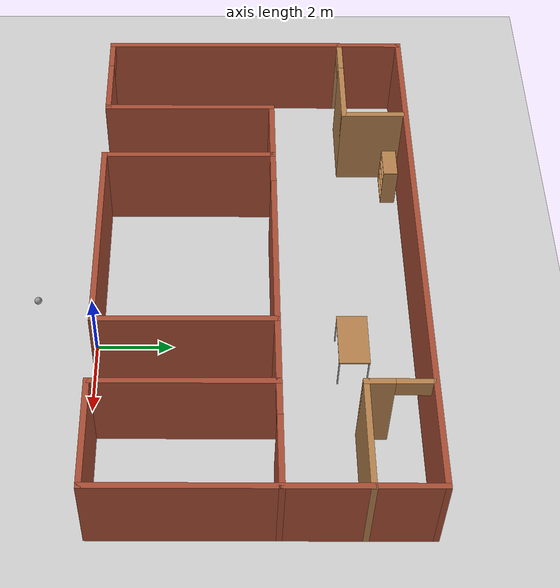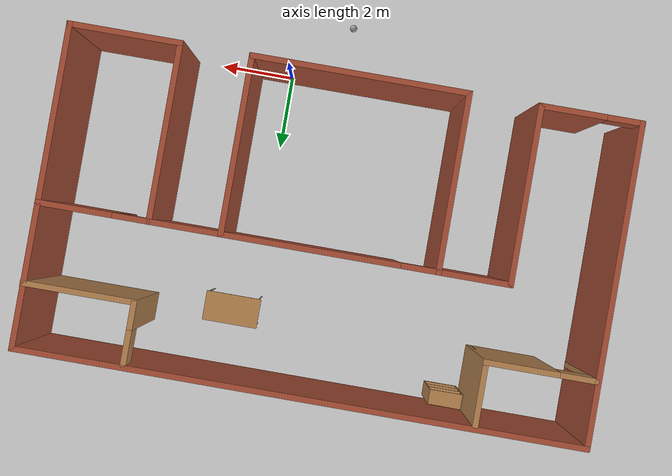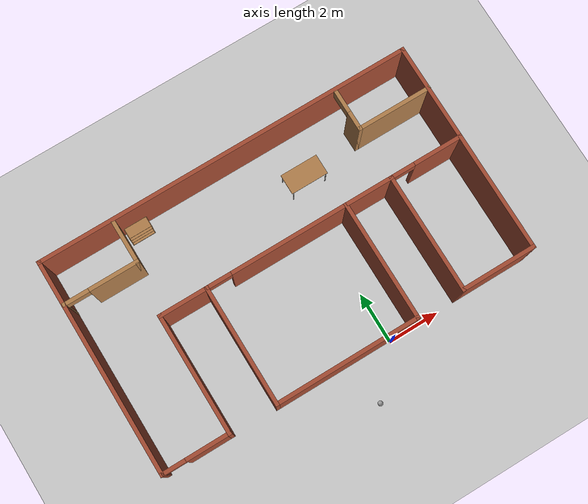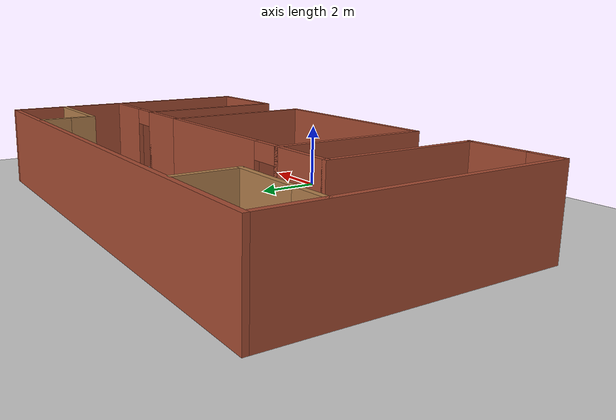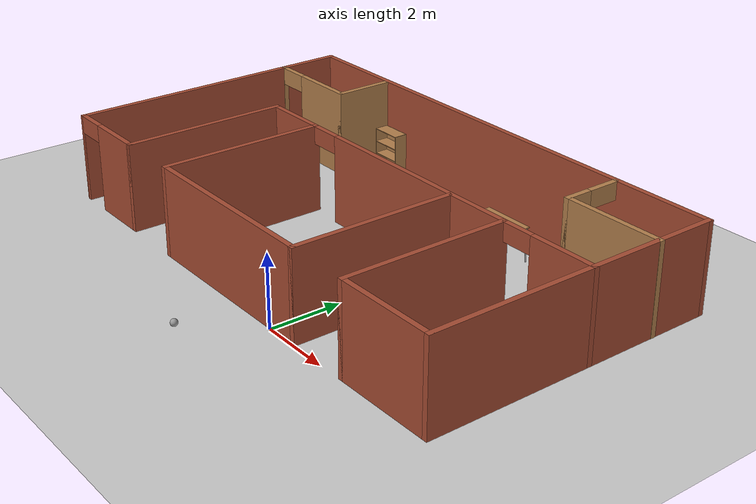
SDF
<sdf version="1.6">
 <world name="default">
  <light name="sun" type="directional">
   <pose>0 0 10 0 -0 0</pose>
   <diffuse>0.8 0.8 0.8 1</diffuse>
   <specular>0.2 0.2 0.2 1</specular>
   <attenuation>
    <range>1000</range>
    <constant>0.9</constant>
    <linear>0.01</linear>
    <quadratic>0.001</quadratic>
   </attenuation>
   <direction>-0.5 0.1 -0.9</direction>
  </light>
  <model name="ground_plane">
   <static>1</static>
   <link name="link">
    <collision name="collision">
     <geometry><plane><normal>0 0 1</normal><size>100 100</size></plane></geometry>
     <surface>
      <contact><collide_bitmask>65535</collide_bitmask></contact>
      <friction><ode><mu>100</mu><mu2>50</mu2></ode></friction>
     </surface>
    </collision>
    <visual name="visual">
     <cast_shadows>0</cast_shadows>
     <geometry><plane><normal>0 0 1</normal><size>100 100</size></plane></geometry>
     <material>
      <script><uri>file://media/materials/scripts/gazebo.material</uri><name>Gazebo/Grey</name></script>
     </material>
    </visual>
   </link>
  </model>
  <gravity>0 0 -9.8</gravity>
  <magnetic_field>6e-06 2.3e-05 -4.2e-05</magnetic_field>
  <atmosphere type="adiabatic"/>
  <physics name="default_physics" default="0" type="ode">
   <max_step_size>0.001</max_step_size>
   <real_time_factor>1</real_time_factor>
   <real_time_update_rate>1000</real_time_update_rate>
  </physics>
  <scene><ambient>0.4 0.4 0.4 1</ambient><background>0.7 0.7 0.7 1</background><shadows>1</shadows></scene>
  <spherical_coordinates>
   <surface_model>EARTH_WGS84</surface_model>
   <latitude_deg>0</latitude_deg>
   <longitude_deg>0</longitude_deg>
   <elevation>0</elevation>
   <heading_deg>0</heading_deg>
  </spherical_coordinates>
  <model name="mybuilding2">
   <pose>-1.76364 4.25644 0 0 -0 0</pose>
   <link name="Wall_1">
    <collision name="Wall_1_Collision">
     <geometry><box><size>8.5 0.15 2.5</size></box></geometry>
     <pose>0 0 1.25 0 -0 0</pose>
    </collision>
    <visual name="Wall_1_Visual">
     <pose>0 0 1.25 0 -0 0</pose>
     <geometry><box><size>8.5 0.15 2.5</size></box></geometry>
     <material>
      <script><uri>file://media/materials/scripts/gazebo.material</uri><name>Gazebo/Bricks</name></script>
      <ambient>1 1 1 1</ambient>
     </material>
     <meta><layer>0</layer></meta>
    </visual>
    <pose>-7.37922 0 0 0 0 -1.5708</pose>
   </link>
   <link name="Wall_10">
    <collision name="Wall_10_Collision">
     <geometry><box><size>3 0.15 2.5</size></box></geometry>
     <pose>0 0 1.25 0 -0 0</pose>
    </collision>
    <visual name="Wall_10_Visual">
     <pose>0 0 1.25 0 -0 0</pose>
     <geometry><box><size>3 0.15 2.5</size></box></geometry>
     <material>
      <script><uri>file://media/materials/scripts/gazebo.material</uri><name>Gazebo/Bricks</name></script>
      <ambient>1 1 1 1</ambient>
     </material>
     <meta><layer>0</layer></meta>
    </visual>
    <pose>5.94578 -4.175 0 0 -0 0</pose>
   </link>
   <link name="Wall_11">
    <collision name="Wall_11_Collision">
     <geometry><box><size>8.5 0.15 2.5</size></box></geometry>
     <pose>0 0 1.25 0 -0 0</pose>
    </collision>
    <visual name="Wall_11_Visual">
     <pose>0 0 1.25 0 -0 0</pose>
     <geometry><box><size>8.5 0.15 2.5</size></box></geometry>
     <material>
      <script><uri>file://media/materials/scripts/gazebo.material</uri><name>Gazebo/Bricks</name></script>
      <ambient>1 1 1 1</ambient>
     </material>
     <meta><layer>0</layer></meta>
    </visual>
    <pose>7.37078 0 0 0 -0 1.5708</pose>
   </link>
   <link name="Wall_12">
    <collision name="Wall_12_Collision">
     <geometry><box><size>14.9 0.15 2.5</size></box></geometry>
     <pose>0 0 1.25 0 -0 0</pose>
    </collision>
    <visual name="Wall_12_Visual">
     <pose>0 0 1.25 0 -0 0</pose>
     <geometry><box><size>14.9 0.15 2.5</size></box></geometry>
     <material>
      <script><uri>file://media/materials/scripts/gazebo.material</uri><name>Gazebo/Bricks</name></script>
      <ambient>1 1 1 1</ambient>
     </material>
     <meta><layer>0</layer></meta>
    </visual>
    <pose>-0.004225 4.175 0 0 -0 3.14159</pose>
   </link>
   <link name="Wall_14">
    <pose>-5.92381 2.45641 0 0 -0 0</pose>
    <visual name="Wall_14_Visual_0">
     <pose>-1.43656 0 1.25 0 -0 0</pose>
     <geometry><box><size>0.126889 0.15 2.5</size></box></geometry>
     <material>
      <script><uri>file://media/materials/scripts/gazebo.material</uri><name>Gazebo/Wood</name></script>
      <ambient>1 1 1 1</ambient>
     </material>
     <meta><layer>0</layer></meta>
    </visual>
    <collision name="Wall_14_Collision_0">
     <geometry><box><size>0.126889 0.15 2.5</size></box></geometry>
     <pose>-1.43656 0 1.25 0 -0 0</pose>
    </collision>
    <visual name="Wall_14_Visual_1">
     <pose>0.513445 0 1.25 0 -0 0</pose>
     <geometry><box><size>1.97311 0.15 2.5</size></box></geometry>
     <material>
      <script><uri>file://media/materials/scripts/gazebo.material</uri><name>Gazebo/Wood</name></script>
      <ambient>1 1 1 1</ambient>
     </material>
     <meta><layer>0</layer></meta>
    </visual>
    <collision name="Wall_14_Collision_1">
     <geometry><box><size>1.97311 0.15 2.5</size></box></geometry>
     <pose>0.513445 0 1.25 0 -0 0</pose>
    </collision>
    <visual name="Wall_14_Visual_2">
     <pose>-0.923111 0 2.25 0 -0 0</pose>
     <geometry><box><size>0.9 0.15 0.5</size></box></geometry>
     <material>
      <script><uri>file://media/materials/scripts/gazebo.material</uri><name>Gazebo/Wood</name></script>
      <ambient>1 1 1 1</ambient>
     </material>
     <meta><layer>0</layer></meta>
    </visual>
    <collision name="Wall_14_Collision_2">
     <geometry><box><size>0.9 0.15 0.5</size></box></geometry>
     <pose>-0.923111 0 2.25 0 -0 0</pose>
    </collision>
   </link>
   <link name="Wall_15">
    <collision name="Wall_15_Collision">
     <geometry><box><size>1.75 0.15 2.5</size></box></geometry>
     <pose>0 0 1.25 0 -0 0</pose>
    </collision>
    <visual name="Wall_15_Visual">
     <pose>0 0 1.25 0 -0 0</pose>
     <geometry><box><size>1.75 0.15 2.5</size></box></geometry>
     <material>
      <script><uri>file://media/materials/scripts/gazebo.material</uri><name>Gazebo/Wood</name></script>
      <ambient>1 1 1 1</ambient>
     </material>
     <meta><layer>0</layer></meta>
    </visual>
    <pose>-4.49881 3.25641 0 0 -0 1.5708</pose>
   </link>
   <link name="Wall_17">
    <pose>-0.129225 0.425 0 0 -0 0</pose>
    <visual name="Wall_17_Visual_0">
     <pose>-2.80087 0 1.25 0 -0 0</pose>
     <geometry><box><size>0.148262 0.15 2.5</size></box></geometry>
     <material>
      <script><uri>file://media/materials/scripts/gazebo.material</uri><name>Gazebo/Bricks</name></script>
      <ambient>1 1 1 1</ambient>
     </material>
     <meta><layer>0</layer></meta>
    </visual>
    <collision name="Wall_17_Collision_0">
     <geometry><box><size>0.148262 0.15 2.5</size></box></geometry>
     <pose>-2.80087 0 1.25 0 -0 0</pose>
    </collision>
    <visual name="Wall_17_Visual_1">
     <pose>0.524131 0 1.25 0 -0 0</pose>
     <geometry><box><size>4.70174 0.15 2.5</size></box></geometry>
     <material>
      <script><uri>file://media/materials/scripts/gazebo.material</uri><name>Gazebo/Bricks</name></script>
      <ambient>1 1 1 1</ambient>
     </material>
     <meta><layer>0</layer></meta>
    </visual>
    <collision name="Wall_17_Collision_1">
     <geometry><box><size>4.70174 0.15 2.5</size></box></geometry>
     <pose>0.524131 0 1.25 0 -0 0</pose>
    </collision>
    <visual name="Wall_17_Visual_2">
     <pose>-2.27674 0 2.25 0 -0 0</pose>
     <geometry><box><size>0.9 0.15 0.5</size></box></geometry>
     <material>
      <script><uri>file://media/materials/scripts/gazebo.material</uri><name>Gazebo/Bricks</name></script>
      <ambient>1 1 1 1</ambient>
     </material>
     <meta><layer>0</layer></meta>
    </visual>
    <collision name="Wall_17_Collision_2">
     <geometry><box><size>0.9 0.15 0.5</size></box></geometry>
     <pose>-2.27674 0 2.25 0 -0 0</pose>
    </collision>
   </link>
   <link name="Wall_19">
    <pose>5.94578 0.425 0 0 -0 0</pose>
    <visual name="Wall_19_Visual_0">
     <pose>-1.43993 0 1.25 0 -0 0</pose>
     <geometry><box><size>0.120131 0.15 2.5</size></box></geometry>
     <material>
      <script><uri>file://media/materials/scripts/gazebo.material</uri><name>Gazebo/Bricks</name></script>
      <ambient>1 1 1 1</ambient>
     </material>
     <meta><layer>0</layer></meta>
    </visual>
    <collision name="Wall_19_Collision_0">
     <geometry><box><size>0.120131 0.15 2.5</size></box></geometry>
     <pose>-1.43993 0 1.25 0 -0 0</pose>
    </collision>
    <visual name="Wall_19_Visual_1">
     <pose>0.510066 0 1.25 0 -0 0</pose>
     <geometry><box><size>1.97987 0.15 2.5</size></box></geometry>
     <material>
      <script><uri>file://media/materials/scripts/gazebo.material</uri><name>Gazebo/Bricks</name></script>
      <ambient>1 1 1 1</ambient>
     </material>
     <meta><layer>0</layer></meta>
    </visual>
    <collision name="Wall_19_Collision_1">
     <geometry><box><size>1.97987 0.15 2.5</size></box></geometry>
     <pose>0.510066 0 1.25 0 -0 0</pose>
    </collision>
    <visual name="Wall_19_Visual_2">
     <pose>-0.929869 0 2.25 0 -0 0</pose>
     <geometry><box><size>0.9 0.15 0.5</size></box></geometry>
     <material>
      <script><uri>file://media/materials/scripts/gazebo.material</uri><name>Gazebo/Bricks</name></script>
      <ambient>1 1 1 1</ambient>
     </material>
     <meta><layer>0</layer></meta>
    </visual>
    <collision name="Wall_19_Collision_2">
     <geometry><box><size>0.9 0.15 0.5</size></box></geometry>
     <pose>-0.929869 0 2.25 0 -0 0</pose>
    </collision>
   </link>
   <link name="Wall_2">
    <pose>-6.07923 -4.175 0 0 -0 0</pose>
    <visual name="Wall_2_Visual_0">
     <pose>-1.33437 0 1.25 0 -0 0</pose>
     <geometry><box><size>0.081262 0.15 2.5</size></box></geometry>
     <material>
      <script><uri>file://media/materials/scripts/gazebo.material</uri><name>Gazebo/Bricks</name></script>
      <ambient>1 1 1 1</ambient>
     </material>
     <meta><layer>0</layer></meta>
    </visual>
    <collision name="Wall_2_Collision_0">
     <geometry><box><size>0.081262 0.15 2.5</size></box></geometry>
     <pose>-1.33437 0 1.25 0 -0 0</pose>
    </collision>
    <visual name="Wall_2_Visual_1">
     <pose>0.490631 0 1.25 0 -0 0</pose>
     <geometry><box><size>1.76874 0.15 2.5</size></box></geometry>
     <material>
      <script><uri>file://media/materials/scripts/gazebo.material</uri><name>Gazebo/Bricks</name></script>
      <ambient>1 1 1 1</ambient>
     </material>
     <meta><layer>0</layer></meta>
    </visual>
    <collision name="Wall_2_Collision_1">
     <geometry><box><size>1.76874 0.15 2.5</size></box></geometry>
     <pose>0.490631 0 1.25 0 -0 0</pose>
    </collision>
    <visual name="Wall_2_Visual_2">
     <pose>-0.843738 0 2.25 0 -0 0</pose>
     <geometry><box><size>0.9 0.15 0.5</size></box></geometry>
     <material>
      <script><uri>file://media/materials/scripts/gazebo.material</uri><name>Gazebo/Bricks</name></script>
      <ambient>1 1 1 1</ambient>
     </material>
     <meta><layer>0</layer></meta>
    </visual>
    <collision name="Wall_2_Collision_2">
     <geometry><box><size>0.9 0.15 0.5</size></box></geometry>
     <pose>-0.843738 0 2.25 0 -0 0</pose>
    </collision>
   </link>
   <link name="Wall_21">
    <pose>4.52923 3.29896 0 0 0 -1.5708</pose>
    <visual name="Wall_21_Visual_0">
     <pose>-0.841973 0 1.25 0 -0 0</pose>
     <geometry><box><size>0.066054 0.15 2.5</size></box></geometry>
     <material>
      <script><uri>file://media/materials/scripts/gazebo.material</uri><name>Gazebo/Wood</name></script>
      <ambient>1 1 1 1</ambient>
     </material>
     <meta><layer>0</layer></meta>
    </visual>
    <collision name="Wall_21_Collision_0">
     <geometry><box><size>0.066054 0.15 2.5</size></box></geometry>
     <pose>-0.841973 0 1.25 0 -0 0</pose>
    </collision>
    <visual name="Wall_21_Visual_1">
     <pose>0.483027 0 1.25 0 -0 0</pose>
     <geometry><box><size>0.783946 0.15 2.5</size></box></geometry>
     <material>
      <script><uri>file://media/materials/scripts/gazebo.material</uri><name>Gazebo/Wood</name></script>
      <ambient>1 1 1 1</ambient>
     </material>
     <meta><layer>0</layer></meta>
    </visual>
    <collision name="Wall_21_Collision_1">
     <geometry><box><size>0.783946 0.15 2.5</size></box></geometry>
     <pose>0.483027 0 1.25 0 -0 0</pose>
    </collision>
    <visual name="Wall_21_Visual_2">
     <pose>-0.358946 0 2.25 0 -0 0</pose>
     <geometry><box><size>0.9 0.15 0.5</size></box></geometry>
     <material>
      <script><uri>file://media/materials/scripts/gazebo.material</uri><name>Gazebo/Wood</name></script>
      <ambient>1 1 1 1</ambient>
     </material>
     <meta><layer>0</layer></meta>
    </visual>
    <collision name="Wall_21_Collision_2">
     <geometry><box><size>0.9 0.15 0.5</size></box></geometry>
     <pose>-0.358946 0 2.25 0 -0 0</pose>
    </collision>
   </link>
   <link name="Wall_22">
    <collision name="Wall_22_Collision">
     <geometry><box><size>3 0.15 2.5</size></box></geometry>
     <pose>0 0 1.25 0 -0 0</pose>
    </collision>
    <visual name="Wall_22_Visual">
     <pose>0 0 1.25 0 -0 0</pose>
     <geometry><box><size>3 0.15 2.5</size></box></geometry>
     <material>
      <script><uri>file://media/materials/scripts/gazebo.material</uri><name>Gazebo/Wood</name></script>
      <ambient>1 1 1 1</ambient>
     </material>
     <meta><layer>0</layer></meta>
    </visual>
    <pose>5.95423 2.49896 0 0 -0 0</pose>
   </link>
   <link name="Wall_3">
    <collision name="Wall_3_Collision">
     <geometry><box><size>4.75 0.15 2.5</size></box></geometry>
     <pose>0 0 1.25 0 -0 0</pose>
    </collision>
    <visual name="Wall_3_Visual">
     <pose>0 0 1.25 0 -0 0</pose>
     <geometry><box><size>4.75 0.15 2.5</size></box></geometry>
     <material>
      <script><uri>file://media/materials/scripts/gazebo.material</uri><name>Gazebo/Bricks</name></script>
      <ambient>1 1 1 1</ambient>
     </material>
     <meta><layer>0</layer></meta>
    </visual>
    <pose>-4.77923 -1.875 0 0 -0 1.5708</pose>
   </link>
   <link name="Wall_4">
    <collision name="Wall_4_Collision">
     <geometry><box><size>2 0.15 2.5</size></box></geometry>
     <pose>0 0 1.25 0 -0 0</pose>
    </collision>
    <visual name="Wall_4_Visual">
     <pose>0 0 1.25 0 -0 0</pose>
     <geometry><box><size>2 0.15 2.5</size></box></geometry>
     <material>
      <script><uri>file://media/materials/scripts/gazebo.material</uri><name>Gazebo/Bricks</name></script>
      <ambient>1 1 1 1</ambient>
     </material>
     <meta><layer>0</layer></meta>
    </visual>
    <pose>-3.85423 0.425 0 0 -0 0</pose>
   </link>
   <link name="Wall_5">
    <collision name="Wall_5_Collision">
     <geometry><box><size>4.75 0.15 2.5</size></box></geometry>
     <pose>0 0 1.25 0 -0 0</pose>
    </collision>
    <visual name="Wall_5_Visual">
     <pose>0 0 1.25 0 -0 0</pose>
     <geometry><box><size>4.75 0.15 2.5</size></box></geometry>
     <material>
      <script><uri>file://media/materials/scripts/gazebo.material</uri><name>Gazebo/Bricks</name></script>
      <ambient>1 1 1 1</ambient>
     </material>
     <meta><layer>0</layer></meta>
    </visual>
    <pose>-2.92923 -1.875 0 0 0 -1.5708</pose>
   </link>
   <link name="Wall_6">
    <collision name="Wall_6_Collision">
     <geometry><box><size>5.75 0.15 2.5</size></box></geometry>
     <pose>0 0 1.25 0 -0 0</pose>
    </collision>
    <visual name="Wall_6_Visual">
     <pose>0 0 1.25 0 -0 0</pose>
     <geometry><box><size>5.75 0.15 2.5</size></box></geometry>
     <material>
      <script><uri>file://media/materials/scripts/gazebo.material</uri><name>Gazebo/Bricks</name></script>
      <ambient>1 1 1 1</ambient>
     </material>
     <meta><layer>0</layer></meta>
    </visual>
    <pose>-0.129225 -4.175 0 0 -0 0</pose>
   </link>
   <link name="Wall_7">
    <collision name="Wall_7_Collision">
     <geometry><box><size>4.75 0.15 2.5</size></box></geometry>
     <pose>0 0 1.25 0 -0 0</pose>
    </collision>
    <visual name="Wall_7_Visual">
     <pose>0 0 1.25 0 -0 0</pose>
     <geometry><box><size>4.75 0.15 2.5</size></box></geometry>
     <material>
      <script><uri>file://media/materials/scripts/gazebo.material</uri><name>Gazebo/Bricks</name></script>
      <ambient>1 1 1 1</ambient>
     </material>
     <meta><layer>0</layer></meta>
    </visual>
    <pose>2.67077 -1.875 0 0 -0 1.5708</pose>
   </link>
   <link name="Wall_8">
    <collision name="Wall_8_Collision">
     <geometry><box><size>2 0.15 2.5</size></box></geometry>
     <pose>0 0 1.25 0 -0 0</pose>
    </collision>
    <visual name="Wall_8_Visual">
     <pose>0 0 1.25 0 -0 0</pose>
     <geometry><box><size>2 0.15 2.5</size></box></geometry>
     <material>
      <script><uri>file://media/materials/scripts/gazebo.material</uri><name>Gazebo/Bricks</name></script>
      <ambient>1 1 1 1</ambient>
     </material>
     <meta><layer>0</layer></meta>
    </visual>
    <pose>3.59578 0.425 0 0 -0 0</pose>
   </link>
   <link name="Wall_9">
    <collision name="Wall_9_Collision">
     <geometry><box><size>4.75 0.15 2.5</size></box></geometry>
     <pose>0 0 1.25 0 -0 0</pose>
    </collision>
    <visual name="Wall_9_Visual">
     <pose>0 0 1.25 0 -0 0</pose>
     <geometry><box><size>4.75 0.15 2.5</size></box></geometry>
     <material>
      <script><uri>file://media/materials/scripts/gazebo.material</uri><name>Gazebo/Bricks</name></script>
      <ambient>1 1 1 1</ambient>
     </material>
     <meta><layer>0</layer></meta>
    </visual>
    <pose>4.52078 -1.875 0 0 0 -1.5708</pose>
   </link>
   <static>1</static>
  </model>
  <model name="bookshelf">
   <static>1</static>
   <link name="link">
    <inertial><mass>1</mass></inertial>
    <collision name="back">
     <pose>0 0.005 0.6 0 -0 0</pose>
     <geometry><box><size>0.9 0.01 1.2</size></box></geometry>
    </collision>
    <visual name="visual1">
     <pose>0 0.005 0.6 0 -0 0</pose>
     <geometry><box><size>0.9 0.01 1.2</size></box></geometry>
     <material>
      <script><uri>file://media/materials/scripts/gazebo.material</uri><name>Gazebo/Wood</name></script>
     </material>
    </visual>
    <collision name="left_side">
     <pose>0.45 -0.195 0.6 0 -0 0</pose>
     <geometry><box><size>0.02 0.4 1.2</size></box></geometry>
    </collision>
    <visual name="visual2">
     <pose>0.45 -0.195 0.6 0 -0 0</pose>
     <geometry><box><size>0.02 0.4 1.2</size></box></geometry>
     <material>
      <script><uri>file://media/materials/scripts/gazebo.material</uri><name>Gazebo/Wood</name></script>
     </material>
    </visual>
    <collision name="right_side">
     <pose>-0.45 -0.195 0.6 0 -0 0</pose>
     <geometry><box><size>0.02 0.4 1.2</size></box></geometry>
    </collision>
    <visual name="visual3">
     <pose>-0.45 -0.195 0.6 0 -0 0</pose>
     <geometry><box><size>0.02 0.4 1.2</size></box></geometry>
     <material>
      <script><uri>file://media/materials/scripts/gazebo.material</uri><name>Gazebo/Wood</name></script>
     </material>
    </visual>
    <collision name="bottom">
     <pose>0 -0.195 0.03 0 -0 0</pose>
     <geometry><box><size>0.88 0.4 0.06</size></box></geometry>
    </collision>
    <visual name="visual4">
     <pose>0 -0.195 0.03 0 -0 0</pose>
     <geometry><box><size>0.88 0.4 0.06</size></box></geometry>
     <material>
      <script><uri>file://media/materials/scripts/gazebo.material</uri><name>Gazebo/Wood</name></script>
     </material>
    </visual>
    <collision name="top">
     <pose>0 -0.195 1.19 0 -0 0</pose>
     <geometry><box><size>0.88 0.4 0.02</size></box></geometry>
    </collision>
    <visual name="visual5">
     <pose>0 -0.195 1.19 0 -0 0</pose>
     <geometry><box><size>0.88 0.4 0.02</size></box></geometry>
     <material>
      <script><uri>file://media/materials/scripts/gazebo.material</uri><name>Gazebo/Wood</name></script>
     </material>
    </visual>
    <collision name="low_shelf">
     <pose>0 -0.195 0.43 0 -0 0</pose>
     <geometry><box><size>0.88 0.4 0.02</size></box></geometry>
    </collision>
    <visual name="visual6">
     <pose>0 -0.195 0.43 0 -0 0</pose>
     <geometry><box><size>0.88 0.4 0.02</size></box></geometry>
     <material>
      <script><uri>file://media/materials/scripts/gazebo.material</uri><name>Gazebo/Wood</name></script>
     </material>
    </visual>
    <collision name="high_shelf">
     <pose>0 -0.195 0.8 0 -0 0</pose>
     <geometry><box><size>0.88 0.4 0.02</size></box></geometry>
    </collision>
    <visual name="visual7">
     <pose>0 -0.195 0.8 0 -0 0</pose>
     <geometry><box><size>0.88 0.4 0.02</size></box></geometry>
     <material>
      <script><uri>file://media/materials/scripts/gazebo.material</uri><name>Gazebo/Wood</name></script>
     </material>
    </visual>
   </link>
   <pose>-5.64612 8.25094 0 0 -0 0</pose>
  </model>
  <model name="table">
   <static>1</static>
   <link name="link">
    <collision name="surface">
     <pose>0 0 1 0 -0 0</pose>
     <geometry><box><size>1.5 0.8 0.03</size></box></geometry>
     <surface><friction><ode><mu>0.6</mu><mu2>0.6</mu2></ode></friction></surface>
    </collision>
    <visual name="visual1">
     <pose>0 0 1 0 -0 0</pose>
     <geometry><box><size>1.5 0.8 0.03</size></box></geometry>
     <material>
      <script><uri>file://media/materials/scripts/gazebo.material</uri><name>Gazebo/Wood</name></script>
     </material>
    </visual>
    <collision name="front_left_leg">
     <pose>0.68 0.38 0.5 0 -0 0</pose>
     <geometry><cylinder><radius>0.02</radius><length>1</length></cylinder></geometry>
    </collision>
    <visual name="front_left_leg">
     <pose>0.68 0.38 0.5 0 -0 0</pose>
     <geometry><cylinder><radius>0.02</radius><length>1</length></cylinder></geometry>
     <material>
      <script><uri>file://media/materials/scripts/gazebo.material</uri><name>Gazebo/Grey</name></script>
     </material>
    </visual>
    <collision name="front_right_leg">
     <pose>0.68 -0.38 0.5 0 -0 0</pose>
     <geometry><cylinder><radius>0.02</radius><length>1</length></cylinder></geometry>
    </collision>
    <visual name="front_right_leg">
     <pose>0.68 -0.38 0.5 0 -0 0</pose>
     <geometry><cylinder><radius>0.02</radius><length>1</length></cylinder></geometry>
     <material>
      <script><uri>file://media/materials/scripts/gazebo.material</uri><name>Gazebo/Grey</name></script>
     </material>
    </visual>
    <collision name="back_right_leg">
     <pose>-0.68 -0.38 0.5 0 -0 0</pose>
     <geometry><cylinder><radius>0.02</radius><length>1</length></cylinder></geometry>
    </collision>
    <visual name="back_right_leg">
     <pose>-0.68 -0.38 0.5 0 -0 0</pose>
     <geometry><cylinder><radius>0.02</radius><length>1</length></cylinder></geometry>
     <material>
      <script><uri>file://media/materials/scripts/gazebo.material</uri><name>Gazebo/Grey</name></script>
     </material>
    </visual>
    <collision name="back_left_leg">
     <pose>-0.68 0.38 0.5 0 -0 0</pose>
     <geometry><cylinder><radius>0.02</radius><length>1</length></cylinder></geometry>
    </collision>
    <visual name="back_left_leg">
     <pose>-0.68 0.38 0.5 0 -0 0</pose>
     <geometry><cylinder><radius>0.02</radius><length>1</length></cylinder></geometry>
     <material>
      <script><uri>file://media/materials/scripts/gazebo.material</uri><name>Gazebo/Grey</name></script>
     </material>
    </visual>
   </link>
   <pose>0.46248 6.68374 0 0 -0 0</pose>
  </model>
  <model name="my_ball">
   <link name="link">
    <inertial>
     <mass>1</mass>
     <inertia><ixx>0.1</ixx><ixy>0</ixy><ixz>0</ixz><iyy>0.1</iyy><iyz>0</iyz><izz>0.1</izz></inertia>
    </inertial>
    <visual name="visual">
     <geometry><sphere><radius>0.1</radius></sphere></geometry>
     <material>
      <script><name>Gazebo/Grey</name><uri>file://media/materials/scripts/gazebo.material</uri></script>
      <shader type="pixel"><normal_map>__default__</normal_map></shader>
      <ambient>1 1 1 1</ambient>
      <diffuse>1 1 1 1</diffuse>
      <specular>1 1 1 1</specular>
      <emissive>1 1 1 1</emissive>
     </material>
    </visual>
    <collision name="collision">
     <geometry><sphere><radius>0.1</radius></sphere></geometry>
     <surface>
      <friction>
       <ode><mu>1</mu><mu2>1</mu2><fdir1>0 0 0</fdir1><slip1>0</slip1><slip2>0</slip2></ode>
       <torsional>
        <coefficient>1</coefficient>
        <patch_radius>0</patch_radius>
        <surface_radius>0</surface_radius>
        <use_patch_radius>1</use_patch_radius>
        <ode><slip>0</slip></ode>
       </torsional>
      </friction>
      <bounce><restitution_coefficient>0</restitution_coefficient><threshold>1e+06</threshold></bounce>
      <contact>
       <collide_without_contact>0</collide_without_contact>
       <collide_without_contact_bitmask>1</collide_without_contact_bitmask>
       <collide_bitmask>1</collide_bitmask>
       <ode>
        <soft_cfm>0</soft_cfm>
        <soft_erp>0.2</soft_erp>
        <kp>1e+13</kp>
        <kd>1</kd>
        <max_vel>0.01</max_vel>
        <min_depth>0</min_depth>
       </ode>
       <bullet>
        <split_impulse>1</split_impulse>
        <split_impulse_penetration_threshold>-0.01</split_impulse_penetration_threshold>
        <soft_cfm>0</soft_cfm>
        <soft_erp>0.2</soft_erp>
        <kp>1e+13</kp>
        <kd>1</kd>
       </bullet>
      </contact>
     </surface>
    </collision>
   </link>
   <static>0</static>
   <pose>-1.48268 -1.68977 0.1 0 -0 0</pose>
  </model>
 </world>
</sdf>
